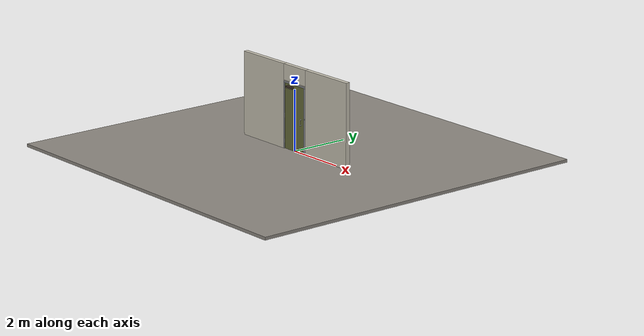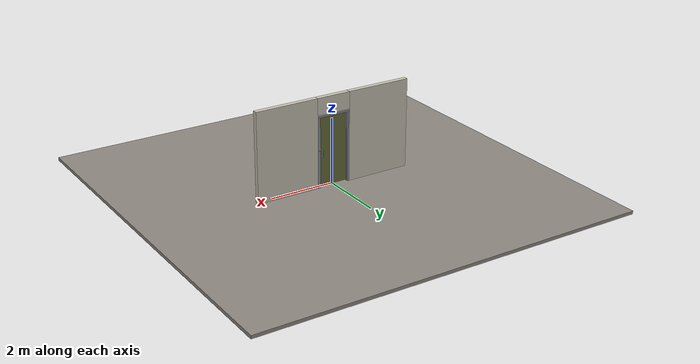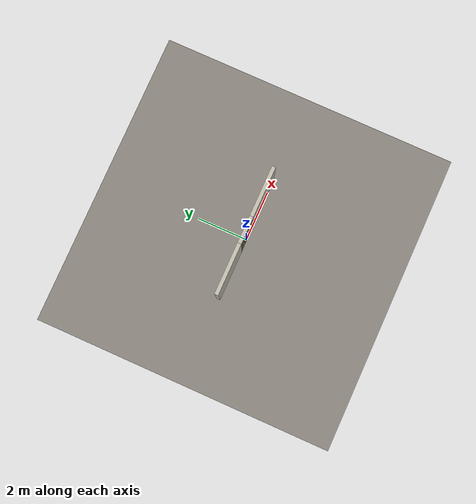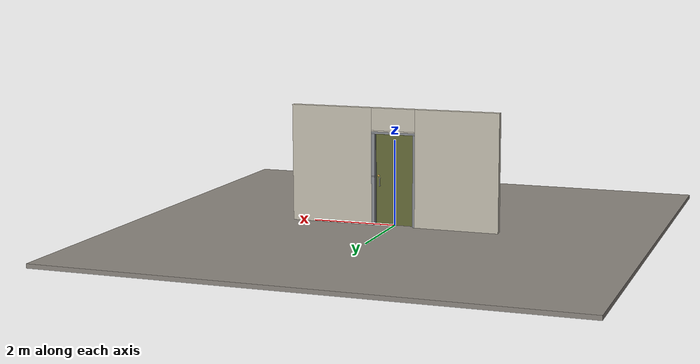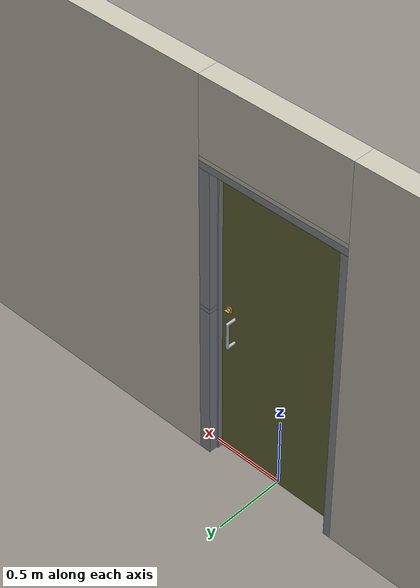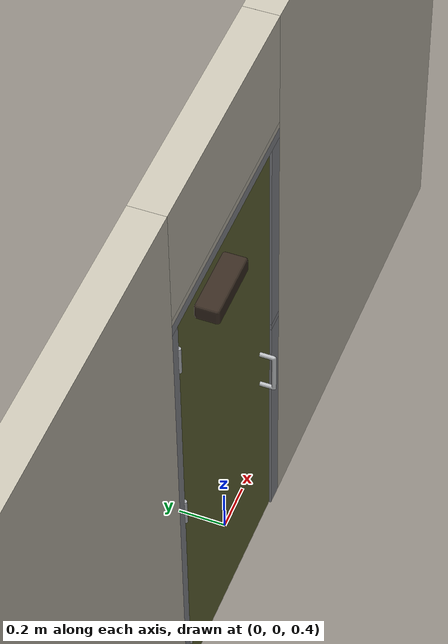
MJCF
<?xml version="1.0" ?>
<mujoco model="db0270_swing_single_simple">
  <compiler angle="radian" meshdir="../../hardware" texturedir="../../textures" autolimits="true" inertiafromgeom="false"/>
  <option timestep="0.002" integrator="implicitfast" cone="elliptic" impratio="10" noslip_iterations="3">
    <flag multiccd="enable"/>
  </option>
  <size memory="16M"/>
  <default>
    <geom condim="4" solref="0.005 1" solimp="0.95 0.99 0.001"/>
    <joint solreflimit="0.005 1" solimplimit="0.95 0.99 0.001"/>
    <tendon solreflimit="0.005 1"/>
    <equality solref="0.002 1"/>
  </default>
  <visual>
    <headlight ambient="0.4 0.4 0.4" diffuse="0.7 0.7 0.7" specular="0.2 0.2 0.2"/>
    <quality shadowsize="4096"/>
    <map znear="0.01" zfar="60"/>
  </visual>
  <asset>
    <mesh name="closer_body_fdc4667657" file="closer_body_fdc4667657.obj"/>
    <mesh name="hinge_ed08f20e7f" file="hinge_ed08f20e7f.obj"/>
    <mesh name="hinge_jamb_1278ce3e25" file="hinge_jamb_1278ce3e25.obj"/>
    <mesh name="pull_1e5d69a91a" file="pull_1e5d69a91a.obj"/>
    <mesh name="thumbturn_eb5c9899a3" file="thumbturn_eb5c9899a3.obj"/>
    <material name="mat_floor" rgba="0.55 0.53 0.5 1" specular="0.2" shininess="0.15" reflectance="0"/>
    <material name="mat_wall" rgba="0.78 0.76 0.7 1" specular="0.2" shininess="0.1" reflectance="0"/>
    <material name="mat_leaf" rgba="0.4 0.42 0.22 1" specular="0.23" shininess="0.5" reflectance="0.02"/>
    <material name="mat_rivet" rgba="0.55 0.56 0.58 1" specular="0.8" shininess="0.55" reflectance="0.4"/>
    <material name="mat_hinge" rgba="0.65 0.66 0.68 1" specular="0.74" shininess="0.5" reflectance="0.36"/>
    <material name="mat_op_stainless" rgba="0.75 0.76 0.77 1" specular="0.8" shininess="0.65" reflectance="0.4"/>
    <material name="mat_deadbolt" rgba="0.85 0.66 0.3 1" specular="0.8" shininess="0.75" reflectance="0.4"/>
    <material name="mat_frame" rgba="0.55 0.56 0.58 1" specular="0.8" shininess="0.55" reflectance="0.4"/>
    <material name="mat_closer" rgba="0.22 0.17 0.13 1" specular="0.8" shininess="0.6" reflectance="0.4"/>
    <material name="mat_placard" rgba="0.95 0.75 0.05 1" specular="0.2" shininess="0.5" reflectance="0"/>
    <texture name="skybox" type="skybox" builtin="gradient" rgb1="0.6 0.7 0.85" rgb2="0.9 0.92 0.95" width="256" height="256"/>
  </asset>
  <worldbody>
    <light name="sun" pos="1.5 -2.5 4" dir="-0.3 0.5 -0.8" directional="true" diffuse="0.8 0.8 0.8" specular="0.3 0.3 0.3" castshadow="true"/>
    <light name="fill" pos="-1.5 2.5 3" dir="0.3 -0.5 -0.7" directional="true" diffuse="0.35 0.35 0.4" castshadow="false"/>
    <camera name="robot_view" pos="0 -2.594313 1.812087" xyaxes="1 0 0 0 0.26963 0.962964" fovy="52"/>
    <camera name="far_view" pos="0 2.681312 1.812087" xyaxes="-1 0 0 0 -0.26963 0.962964" fovy="52"/>
    <camera name="iso" pos="2.004737 -2.172262 2.234138" xyaxes="0.741536 0.670913 0 -0.242917 0.268487 0.932151" fovy="46"/>
    <camera name="detail_handle" pos="0.5315 -0.882 1.296" xyaxes="0.97561 0.219512 0 -0.070934 0.315262 0.94635" fovy="38"/>
    <geom name="floor" type="box" size="6 6 0.05" pos="0 0 -0.05" material="mat_floor" group="0" contype="1" conaffinity="1" friction="0.8 0.005 0.0001" density="2400"/>
    <geom name="wall_left" type="box" size="0.99475 0.0725 1.3735" pos="-1.50525 0.0435 1.3735" material="mat_wall" group="0" contype="1" conaffinity="1" friction="0.6 0.005 0.0001" density="800"/>
    <geom name="wall_right" type="box" size="0.97975 0.0725 1.3735" pos="1.52025 0.0435 1.3735" material="mat_wall" group="0" contype="1" conaffinity="1" friction="0.6 0.005 0.0001" density="800"/>
    <geom name="wall_header" type="box" size="0.5255 0.0725 0.26" pos="0.015 0.0435 2.487" material="mat_wall" group="0" contype="1" conaffinity="1" friction="0.6 0.005 0.0001" density="800"/>
    <geom name="hinge_0_jamb" type="mesh" mesh="hinge_jamb_1278ce3e25" pos="-0.4575 -0.029 0.259" material="mat_hinge" group="1" contype="0" conaffinity="0" density="7850"/>
    <geom name="hinge_1_jamb" type="mesh" mesh="hinge_jamb_1278ce3e25" pos="-0.4575 -0.029 1.076" material="mat_hinge" group="1" contype="0" conaffinity="0" density="7850"/>
    <geom name="hinge_2_jamb" type="mesh" mesh="hinge_jamb_1278ce3e25" pos="-0.4575 -0.029 1.963" material="mat_hinge" group="1" contype="0" conaffinity="0" density="7850"/>
    <geom name="leaf_deadbolt_strike_b" type="box" size="0.0155 0.003 0.0005" pos="0.46 0 1.1375" quat="-0.5 -0.5 0.5 0.5" material="mat_deadbolt" group="1" contype="0" conaffinity="0" density="7800"/>
    <geom name="leaf_deadbolt_strike_l" type="box" size="0.003 0.0155 0.0005" pos="0.46 0.0125 1.156" quat="-0.5 -0.5 0.5 0.5" material="mat_deadbolt" group="1" contype="0" conaffinity="0" density="7800"/>
    <geom name="leaf_deadbolt_strike_t" type="box" size="0.0155 0.003 0.0005" pos="0.46 0 1.1745" quat="-0.5 -0.5 0.5 0.5" material="mat_deadbolt" group="1" contype="0" conaffinity="0" density="7800"/>
    <geom name="leaf_deadbolt_strike_r" type="box" size="0.003 0.0155 0.0005" pos="0.46 -0.0125 1.156" quat="-0.5 -0.5 0.5 0.5" material="mat_deadbolt" group="1" contype="0" conaffinity="0" density="7800"/>
    <geom name="jamb_hinge" type="box" size="0.025 0.0725 1.0735" pos="-0.4855 0.0435 1.0735" material="mat_frame" group="0" contype="1" conaffinity="1" friction="0.6 0.005 0.0001" density="300"/>
    <geom name="strike_1156_wall_n" type="box" size="0.04 0.05325 0.0155" pos="0.5005 0.06275 1.156" material="mat_frame" group="0" contype="1" conaffinity="1" friction="0.6 0.005 0.0001" density="300"/>
    <geom name="strike_1156_wall_p" type="box" size="0.04 0.00975 0.0155" pos="0.5005 -0.01925 1.156" material="mat_frame" group="0" contype="1" conaffinity="1" friction="0.6 0.005 0.0001" density="300"/>
    <geom name="strike_1156_back" type="box" size="0.0253 0.0095 0.0155" pos="0.5152 0 1.156" material="mat_frame" group="0" contype="1" conaffinity="1" friction="0.6 0.005 0.0001" density="300"/>
    <geom name="jamb_strike_0" type="box" size="0.04 0.0725 0.57025" pos="0.5005 0.0435 0.57025" material="mat_frame" group="0" contype="1" conaffinity="1" friction="0.6 0.005 0.0001" density="300"/>
    <geom name="jamb_strike_1" type="box" size="0.04 0.0725 0.48775" pos="0.5005 0.0435 1.65925" material="mat_frame" group="0" contype="1" conaffinity="1" friction="0.6 0.005 0.0001" density="300"/>
    <geom name="jamb_head" type="box" size="0.5255 0.0725 0.025" pos="0.015 0.0435 2.172" material="mat_frame" group="0" contype="1" conaffinity="1" friction="0.6 0.005 0.0001" density="300"/>
    <geom name="head_stud" type="box" size="0.5255 0.0725 0.015" pos="0.015 0.0435 2.212" material="mat_wall" group="0" contype="1" conaffinity="1" friction="0.6 0.005 0.0001" density="500"/>
    <geom name="stop_hinge" type="box" size="0.0055 0.016 1.0735" pos="-0.455 0.0385 1.0735" material="mat_frame" group="0" contype="1" conaffinity="1" friction="0.6 0.005 0.0001" density="300"/>
    <geom name="stop_strike" type="box" size="0.0055 0.016 1.0735" pos="0.455 0.0385 1.0735" material="mat_frame" group="0" contype="1" conaffinity="1" friction="0.6 0.005 0.0001" density="300"/>
    <geom name="stop_head" type="box" size="0.4605 0.016 0.0055" pos="0 0.0385 2.1415" material="mat_frame" group="0" contype="1" conaffinity="1" friction="0.6 0.005 0.0001" density="300"/>
    <site name="approach_point" pos="0 -1.5 0" quat="1 0 0 0" size="0.05" rgba="0.2 0.9 0.2 0.5" group="4"/>
    <site name="goal_point" pos="0 1.5 0" quat="1 0 0 0" size="0.05" rgba="0.2 0.9 0.2 0.5" group="4"/>
    <site name="door_plane_center" pos="0 0 1.0735" quat="1 0 0 0" size="0.02" rgba="0.2 0.9 0.2 0.5" group="4"/>
    <body name="leaf" pos="-0.4605 0 0">
      <inertial pos="0.435401 -0.010747 1.219132" mass="88.585433" quat="-0.495825 0.47751 0.512249 0.513559" diaginertia="5.773317262 39.267795783 44.905929862"/>
      <joint name="leaf_hinge" type="hinge" axis="0 0 -1" pos="0.003 -0.029 0" limited="true" range="0 1.745329" damping="12.268966" frictionloss="1.088256" stiffness="16.883156" springref="-2.607925" armature="0.02"/>
      <geom name="leaf_slab" type="box" size="0.457 0.022 1.067" pos="0.46 0 1.076" material="mat_leaf" group="0" contype="1" conaffinity="1" friction="0.45 0.005 0.0001" density="1"/>
      <geom name="hinge_0" type="mesh" mesh="hinge_ed08f20e7f" pos="0.003 -0.029 0.259" material="mat_hinge" group="1" contype="0" conaffinity="0" density="7850"/>
      <geom name="hinge_1" type="mesh" mesh="hinge_ed08f20e7f" pos="0.003 -0.029 1.076" material="mat_hinge" group="1" contype="0" conaffinity="0" density="7850"/>
      <geom name="hinge_2" type="mesh" mesh="hinge_ed08f20e7f" pos="0.003 -0.029 1.963" material="mat_hinge" group="1" contype="0" conaffinity="0" density="7850"/>
      <geom name="leaf_pull_n" type="mesh" mesh="pull_1e5d69a91a" pos="0.812 -0.022 1.016" quat="0.707107 0.707107 0 0" material="mat_op_stainless" group="1" contype="0" conaffinity="0" density="3000"/>
      <geom name="leaf_pull_col_n" type="capsule" size="0.0095 0.08" pos="0.812 -0.082 1.016" material="mat_op_stainless" group="3" contype="1" conaffinity="1" rgba="0.8 0.3 0.3 0.25" friction="0.7 0.01 0.0001" density="3000"/>
      <geom name="leaf_pull_p" type="mesh" mesh="pull_1e5d69a91a" pos="0.812 0.022 1.016" quat="-0.707107 0.707107 0 0" material="mat_op_stainless" group="1" contype="0" conaffinity="0" density="3000"/>
      <geom name="leaf_pull_col_p" type="capsule" size="0.0095 0.08" pos="0.812 0.082 1.016" material="mat_op_stainless" group="3" contype="1" conaffinity="1" rgba="0.8 0.3 0.3 0.25" friction="0.7 0.01 0.0001" density="3000"/>
      <geom name="leaf_deadbolt_faceplate" type="box" size="0.0006 0.014 0.0245" pos="0.9164 0 1.156" material="mat_deadbolt" group="1" contype="0" conaffinity="0" density="8500"/>
      <geom name="closer_body" type="mesh" mesh="closer_body_fdc4667657" pos="0.3 -0.022 2.054" quat="0.707107 0.707107 0 0" material="mat_closer" group="1" contype="0" conaffinity="0" density="2000"/>
      <geom name="closer_body_col" type="box" size="0.145 0.05 0.035" pos="0.3 -0.072 2.054" material="mat_closer" group="3" contype="1" conaffinity="1" rgba="0.8 0.3 0.3 0.25" friction="0.6 0.005 0.0001" density="2000"/>
      <site name="leaf_pull_grip_n" pos="0.812 -0.082 1.016" quat="1 0 0 0" size="0.012" rgba="0.2 0.9 0.2 0.5" group="4"/>
      <site name="leaf_pull_grip_p" pos="0.812 0.082 1.016" quat="1 0 0 0" size="0.012" rgba="0.2 0.9 0.2 0.5" group="4"/>
      <site name="leaf_edge_mid" pos="0.917 0 1.067" quat="1 0 0 0" size="0.02" rgba="0.2 0.9 0.2 0.5" group="4"/>
      <body name="leaf_deadbolt" pos="0.917 0 1.156">
        <inertial pos="-0.0277 0 0" mass="0.18836" quat="0 0 0.707107 0.707107" diaginertia="0.000013829 0.000052194 0.000057986"/>
        <joint name="leaf_deadbolt_slide" type="slide" axis="-1 0 0" limited="true" range="0 0.0254" damping="5" frictionloss="1.5" armature="0.1" ref="0.0254"/>
        <geom name="leaf_deadbolt_box" type="box" size="0.0277 0.008 0.0125" pos="-0.0277 0 0" material="mat_deadbolt" group="0" contype="1" conaffinity="1" friction="0.3 0.005 0.0001" density="8500"/>
      </body>
      <body name="leaf_deadbolt_thumbturn" pos="0.852 0.022 1.156">
        <inertial pos="0 0.012928 0" mass="0.178946" quat="0.707107 -0.000001 -0.000001 0.707107" diaginertia="0.000026045 0.000026215 0.000032438"/>
        <joint name="leaf_deadbolt_thumbturn_hinge" type="hinge" axis="0 -1 0" limited="true" range="0 1.5708" damping="0.05" frictionloss="0.35" armature="0.005" ref="1.5708"/>
        <geom name="leaf_deadbolt_thumbturn_mesh" type="mesh" mesh="thumbturn_eb5c9899a3" pos="0 0 0" quat="-0.499999 0.499999 0.500001 0.500001" material="mat_deadbolt" group="0" contype="1" conaffinity="1" friction="0.6 0.005 0.0001" density="7100"/>
        <geom name="leaf_deadbolt_thumbturn_col" type="box" size="0.006 0.012 0.016" pos="0 0.02 0" quat="0.707105 0 -0.707108 0" material="mat_deadbolt" group="3" contype="1" conaffinity="1" rgba="0.8 0.3 0.3 0.25" friction="0.6 0.005 0.0001" density="7100"/>
      </body>
    </body>
  </worldbody>
  <equality>
    <joint name="leaf_deadbolt_couple" joint1="leaf_deadbolt_slide" joint2="leaf_deadbolt_thumbturn_hinge" polycoef="0 0.01617 0 0 0" active="true"/>
  </equality>
  <contact>
    <exclude body1="leaf_deadbolt" body2="leaf_deadbolt_thumbturn"/>
  </contact>
  <sensor>
    <jointpos name="leaf_hinge_pos" joint="leaf_hinge"/>
    <jointvel name="leaf_hinge_vel" joint="leaf_hinge"/>
    <jointpos name="leaf_deadbolt_slide_pos" joint="leaf_deadbolt_slide"/>
    <jointvel name="leaf_deadbolt_slide_vel" joint="leaf_deadbolt_slide"/>
    <jointpos name="leaf_deadbolt_thumbturn_hinge_pos" joint="leaf_deadbolt_thumbturn_hinge"/>
    <jointvel name="leaf_deadbolt_thumbturn_hinge_vel" joint="leaf_deadbolt_thumbturn_hinge"/>
  </sensor>
</mujoco>
